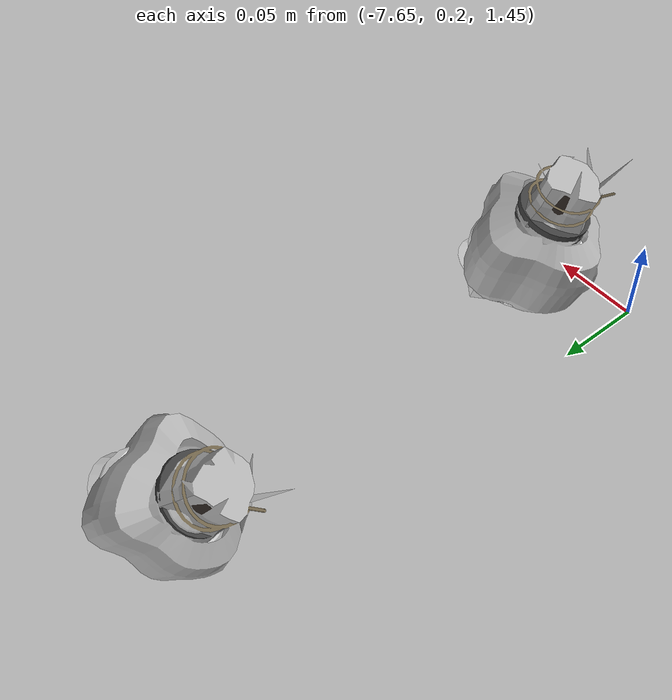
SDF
<sdf version="1.11">
 <world name="peach_orchard">
  <model name="ground">
   <static>true</static>
   <link name="link">
    <visual name="soil">
     <geometry><plane><normal>0 0 1</normal><size>32 22</size></plane></geometry>
     <material>
      <ambient>1 1 1 1</ambient>
      <diffuse>1 1 1 1</diffuse>
      <specular>0.1 0.1 0.1 1</specular>
      <pbr>
       <metal>
        <albedo_map>textures/soil_albedo.png</albedo_map>
        <normal_map type="tangent">textures/soil_normal.png</normal_map>
        <roughness>0.95</roughness>
        <metalness>0</metalness>
       </metal>
      </pbr>
     </material>
    </visual>
    <collision name="c_soil">
     <geometry><plane><normal>0 0 1</normal><size>32 22</size></plane></geometry>
    </collision>
   </link>
  </model>
  <model name="peach_tree_r0_t3_09">
   <pose>-7.5896 0.235479 1.45 0 0.30042 -2.54314</pose>
   <static>true</static>
   <link name="bag">
    <visual name="bag_mesh">
     <pose>0 0 0.0444777 0 0 -0</pose>
     <geometry>
      <mesh><uri>model://peach_sim/meshes/bagged_peach.glb</uri><scale>0.915837 1.02548 1.01086</scale></mesh>
     </geometry>
    </visual>
    <visual name="body">
     <pose>0 0 0.0264777 0 0 0</pose>
     <geometry><ellipsoid><radii>0.0343439 0.0266624 0.0285959</radii></ellipsoid></geometry>
     <material>
      <ambient>1 1 1 1</ambient>
      <diffuse>1 1 1 1</diffuse>
      <specular>0.1 0.1 0.1 1</specular>
      <pbr>
       <metal>
        <albedo_map>textures/paper_bag_albedo.png</albedo_map>
        <normal_map type="tangent">textures/paper_bag_normal.png</normal_map>
        <roughness>0.72</roughness>
        <metalness>0</metalness>
       </metal>
      </pbr>
     </material>
    </visual>
    <visual name="bottom_fold">
     <pose>0 0 0.012 0 0 0.35</pose>
     <geometry><box><size>0.053233 0.0306617 0.022</size></box></geometry>
     <material>
      <ambient>1 1 1 1</ambient>
      <diffuse>1 1 1 1</diffuse>
      <specular>0.1 0.1 0.1 1</specular>
      <pbr>
       <metal>
        <albedo_map>textures/paper_bag_albedo.png</albedo_map>
        <normal_map type="tangent">textures/paper_bag_normal.png</normal_map>
        <roughness>0.8</roughness>
        <metalness>0</metalness>
       </metal>
      </pbr>
     </material>
    </visual>
    <visual name="fruit">
     <pose>0 0 0.0194182 0 0 0</pose>
     <geometry><sphere><radius>0.0264349</radius></sphere></geometry>
     <material>
      <ambient>1 1 1 1</ambient>
      <diffuse>1 1 1 1</diffuse>
      <specular>0.1 0.1 0.1 1</specular>
      <pbr>
       <metal>
        <albedo_map>textures/fruit_skin_albedo.png</albedo_map>
        <normal_map type="tangent">textures/fruit_skin_normal.png</normal_map>
        <roughness>0.55</roughness>
        <metalness>0</metalness>
       </metal>
      </pbr>
     </material>
    </visual>
    <visual name="neck">
     <pose>0 0 0.0619553 0 0 0</pose>
     <geometry><cylinder><radius>0.013</radius><length>0.018</length></cylinder></geometry>
     <material>
      <ambient>1 1 1 1</ambient>
      <diffuse>1 1 1 1</diffuse>
      <specular>0.1 0.1 0.1 1</specular>
      <pbr>
       <metal>
        <albedo_map>textures/paper_bag_albedo.png</albedo_map>
        <normal_map type="tangent">textures/paper_bag_normal.png</normal_map>
        <roughness>0.75</roughness>
        <metalness>0</metalness>
       </metal>
      </pbr>
     </material>
    </visual>
    <visual name="gather">
     <pose>0 0 0.0429553 0 0 0</pose>
     <geometry><cylinder><radius>0.019</radius><length>0.02</length></cylinder></geometry>
     <material>
      <ambient>1 1 1 1</ambient>
      <diffuse>1 1 1 1</diffuse>
      <specular>0.1 0.1 0.1 1</specular>
      <pbr>
       <metal>
        <albedo_map>textures/paper_bag_albedo.png</albedo_map>
        <normal_map type="tangent">textures/paper_bag_normal.png</normal_map>
        <roughness>0.8</roughness>
        <metalness>0</metalness>
       </metal>
      </pbr>
     </material>
    </visual>
    <visual name="inner_paper">
     <pose>0 0 0.0669553 0 0 0</pose>
     <geometry><cylinder><radius>0.01</radius><length>0.008</length></cylinder></geometry>
     <material>
      <ambient>0.180392 0.14902 0.133333 1</ambient>
      <diffuse>0.180392 0.14902 0.133333 1</diffuse>
      <specular>0.1 0.1 0.1 1</specular>
     </material>
    </visual>
    <visual name="wire_0">
     <pose>0 0 0.0569553 0 0 0</pose>
     <geometry><cylinder><radius>0.0205</radius><length>0.0035</length></cylinder></geometry>
     <material>
      <ambient>0.25 0.25 0.25 1</ambient>
      <diffuse>0.25 0.25 0.25 1</diffuse>
      <specular>0.1 0.1 0.1 1</specular>
     </material>
    </visual>
    <visual name="wire_1">
     <pose>0 0 0.0639553 0 0 0</pose>
     <geometry><cylinder><radius>0.0205</radius><length>0.0035</length></cylinder></geometry>
     <material>
      <ambient>0.25 0.25 0.25 1</ambient>
      <diffuse>0.25 0.25 0.25 1</diffuse>
      <specular>0.1 0.1 0.1 1</specular>
     </material>
    </visual>
    <visual name="wire_tail">
     <pose>0.01 0 0.0649553 0 0.521618 0</pose>
     <geometry><cylinder><radius>0.0012</radius><length>0.026</length></cylinder></geometry>
     <material>
      <ambient>0.25 0.25 0.25 1</ambient>
      <diffuse>0.25 0.25 0.25 1</diffuse>
      <specular>0.1 0.1 0.1 1</specular>
     </material>
    </visual>
    <collision name="c_body">
     <pose>0 0 0.0264777 0 0 0</pose>
     <geometry><cylinder><radius>0.0343439</radius><length>0.0529553</length></cylinder></geometry>
    </collision>
   </link>
  </model>
  <model name="peach_tree_r0_t3_10">
   <pose>-7.58499 0.484331 1.45 0 0.755572 -2.65435</pose>
   <static>true</static>
   <link name="bag">
    <visual name="bag_mesh">
     <pose>0 0 0.0388709 0 0 -0</pose>
     <geometry>
      <mesh><uri>model://peach_sim/meshes/bagged_peach.glb</uri><scale>0.913173 1.02503 0.883428</scale></mesh>
     </geometry>
    </visual>
    <visual name="body">
     <pose>0 0 0.0208709 0 0 0</pose>
     <geometry><ellipsoid><radii>0.034244 0.0266508 0.0225405</radii></ellipsoid></geometry>
     <material>
      <ambient>1 1 1 1</ambient>
      <diffuse>1 1 1 1</diffuse>
      <specular>0.1 0.1 0.1 1</specular>
      <pbr>
       <metal>
        <albedo_map>textures/paper_bag_albedo.png</albedo_map>
        <normal_map type="tangent">textures/paper_bag_normal.png</normal_map>
        <roughness>0.72</roughness>
        <metalness>0</metalness>
       </metal>
      </pbr>
     </material>
    </visual>
    <visual name="bottom_fold">
     <pose>0 0 0.012 0 0 0.35</pose>
     <geometry><box><size>0.0530782 0.0306484 0.022</size></box></geometry>
     <material>
      <ambient>1 1 1 1</ambient>
      <diffuse>1 1 1 1</diffuse>
      <specular>0.1 0.1 0.1 1</specular>
      <pbr>
       <metal>
        <albedo_map>textures/paper_bag_albedo.png</albedo_map>
        <normal_map type="tangent">textures/paper_bag_normal.png</normal_map>
        <roughness>0.8</roughness>
        <metalness>0</metalness>
       </metal>
      </pbr>
     </material>
    </visual>
    <visual name="fruit">
     <pose>0 0 0.020236 0 0 0</pose>
     <geometry><sphere><radius>0.0272854</radius></sphere></geometry>
     <material>
      <ambient>1 1 1 1</ambient>
      <diffuse>1 1 1 1</diffuse>
      <specular>0.1 0.1 0.1 1</specular>
      <pbr>
       <metal>
        <albedo_map>textures/fruit_skin_albedo.png</albedo_map>
        <normal_map type="tangent">textures/fruit_skin_normal.png</normal_map>
        <roughness>0.55</roughness>
        <metalness>0</metalness>
       </metal>
      </pbr>
     </material>
    </visual>
    <visual name="neck">
     <pose>0 0 0.0507417 0 0 0</pose>
     <geometry><cylinder><radius>0.013</radius><length>0.018</length></cylinder></geometry>
     <material>
      <ambient>1 1 1 1</ambient>
      <diffuse>1 1 1 1</diffuse>
      <specular>0.1 0.1 0.1 1</specular>
      <pbr>
       <metal>
        <albedo_map>textures/paper_bag_albedo.png</albedo_map>
        <normal_map type="tangent">textures/paper_bag_normal.png</normal_map>
        <roughness>0.75</roughness>
        <metalness>0</metalness>
       </metal>
      </pbr>
     </material>
    </visual>
    <visual name="gather">
     <pose>0 0 0.0317417 0 0 0</pose>
     <geometry><cylinder><radius>0.019</radius><length>0.02</length></cylinder></geometry>
     <material>
      <ambient>1 1 1 1</ambient>
      <diffuse>1 1 1 1</diffuse>
      <specular>0.1 0.1 0.1 1</specular>
      <pbr>
       <metal>
        <albedo_map>textures/paper_bag_albedo.png</albedo_map>
        <normal_map type="tangent">textures/paper_bag_normal.png</normal_map>
        <roughness>0.8</roughness>
        <metalness>0</metalness>
       </metal>
      </pbr>
     </material>
    </visual>
    <visual name="inner_paper">
     <pose>0 0 0.0557417 0 0 0</pose>
     <geometry><cylinder><radius>0.01</radius><length>0.008</length></cylinder></geometry>
     <material>
      <ambient>0.180392 0.14902 0.133333 1</ambient>
      <diffuse>0.180392 0.14902 0.133333 1</diffuse>
      <specular>0.1 0.1 0.1 1</specular>
     </material>
    </visual>
    <visual name="wire_0">
     <pose>0 0 0.0457417 0 0 0</pose>
     <geometry><cylinder><radius>0.0205</radius><length>0.0035</length></cylinder></geometry>
     <material>
      <ambient>0.25 0.25 0.25 1</ambient>
      <diffuse>0.25 0.25 0.25 1</diffuse>
      <specular>0.1 0.1 0.1 1</specular>
     </material>
    </visual>
    <visual name="wire_1">
     <pose>0 0 0.0527417 0 0 0</pose>
     <geometry><cylinder><radius>0.0205</radius><length>0.0035</length></cylinder></geometry>
     <material>
      <ambient>0.25 0.25 0.25 1</ambient>
      <diffuse>0.25 0.25 0.25 1</diffuse>
      <specular>0.1 0.1 0.1 1</specular>
     </material>
    </visual>
    <visual name="wire_tail">
     <pose>0.01 0 0.0537417 0 0.521618 0</pose>
     <geometry><cylinder><radius>0.0012</radius><length>0.026</length></cylinder></geometry>
     <material>
      <ambient>0.25 0.25 0.25 1</ambient>
      <diffuse>0.25 0.25 0.25 1</diffuse>
      <specular>0.1 0.1 0.1 1</specular>
     </material>
    </visual>
    <collision name="c_body">
     <pose>0 0 0.0208709 0 0 0</pose>
     <geometry><cylinder><radius>0.034244</radius><length>0.0417417</length></cylinder></geometry>
    </collision>
   </link>
  </model>
 </world>
</sdf>
